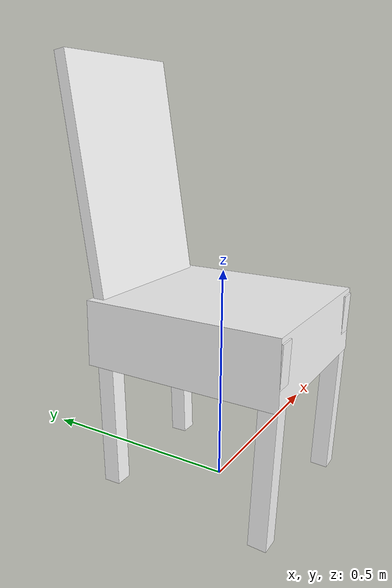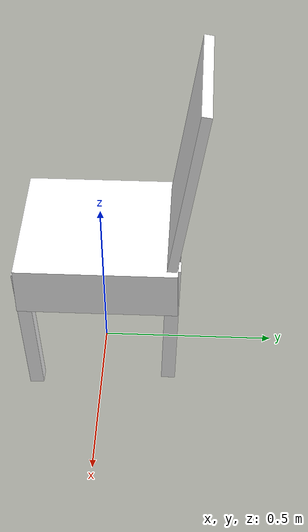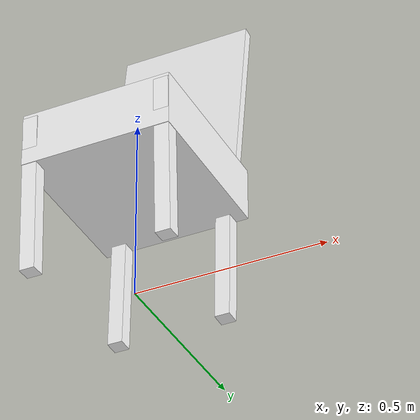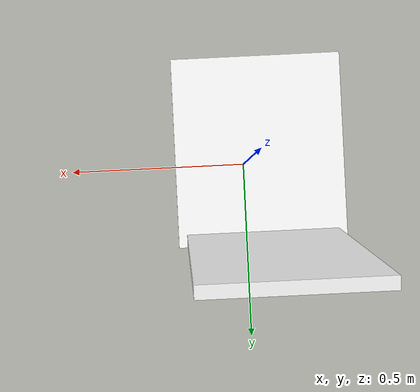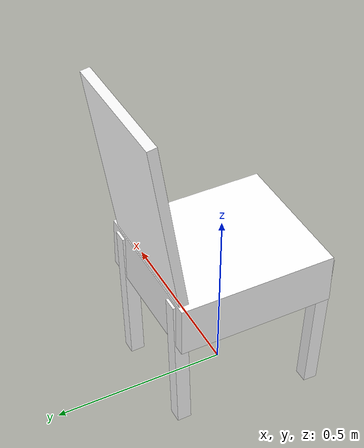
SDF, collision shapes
<?xml version="1.0" encoding="UTF-8"?>
<sdf version="1.6">
    <model name="DiningChair">
        <static>true</static>
        <link name="base_link">
            <visual name="visual">
                <geometry>
                    <mesh>
                        <uri>meshes/diningchair.dae</uri>
                    </mesh>
                </geometry>
                <material>
                    <diffuse>1.0 1.0 1.0</diffuse>
                    <specular>1.0 1.0 1.0</specular>
                    <pbr>
                        <metal>
                            <albedo_map>materials/textures/DiningChair_Albedo.jpg</albedo_map>
                            <normal_map>materials/textures/DiningChair_Normal.jpg</normal_map>
                            <roughness_map>materials/textures/DiningChair_Roughness.jpg</roughness_map>
                        </metal>
                    </pbr>
                </material>
            </visual>
            <collision name="Box001">
                <pose>-0.146568 0.202837 0.217947 -0.0345933 0.0 0.0</pose>
                <geometry>
                    <box>
                        <size>0.04 0.04 0.436154</size>
                    </box>
                </geometry>
            </collision>
            <collision name="Box002">
                <pose>-0.178948 -0.198708 0.217889 0.0415208 0.0 0.0</pose>
                <geometry>
                    <box>
                        <size>0.04 0.04 0.436154</size>
                    </box>
                </geometry>
            </collision>
            <collision name="Box003">
                <pose>0.0 -0.000563771 0.372588 0.0 0.0 0.0</pose>
                <geometry>
                    <box>
                        <size>0.3996 0.4468 0.148292</size>
                    </box>
                </geometry>
            </collision>
            <collision name="Box004">
                <pose>0.0 0.246451 0.700029 -0.156988 0.0 0.0</pose>
                <geometry>
                    <box>
                        <size>0.35964 0.0272995 0.52543</size>
                    </box>
                </geometry>
            </collision>
            <collision name="Box005">
                <pose>0.17895 -0.198708 0.217889 0.0415208 0.0 0.0</pose>
                <geometry>
                    <box>
                        <size>0.04 0.04 0.436154</size>
                    </box>
                </geometry>
            </collision>
            <collision name="Box006">
                <pose>0.14657 0.202837 0.217947 -0.0345933 0.0 0.0</pose>
                <geometry>
                    <box>
                        <size>0.04 0.04 0.436154</size>
                    </box>
                </geometry>
            </collision>
        </link>
    </model>
</sdf>
